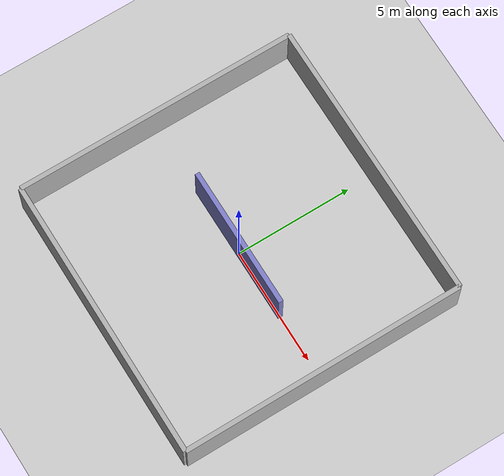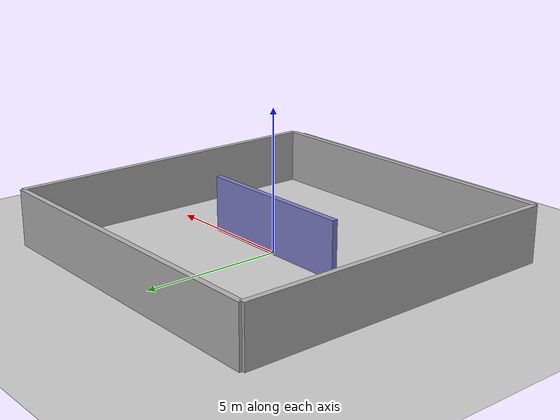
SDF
<?xml version="1.0" ?>
<sdf version="1.6">
  <world name="default">

    <!-- Physics plugin -->
    <plugin
      filename="gz-sim-physics-system"
      name="gz::sim::systems::Physics">
    </plugin>

    <!-- User commands -->
    <plugin
      filename="gz-sim-user-commands-system"
      name="gz::sim::systems::UserCommands">
    </plugin>

    <!-- Scene broadcaster -->
    <plugin
      filename="gz-sim-scene-broadcaster-system"
      name="gz::sim::systems::SceneBroadcaster">
    </plugin>

    <!-- Sensors -->
    <plugin
      filename="gz-sim-sensors-system"
      name="gz::sim::systems::Sensors">
      <render_engine>ogre2</render_engine>
    </plugin>

    <!-- IMU -->
    <plugin filename="gz-sim-imu-system"
      name="gz::sim::systems::Imu">
    </plugin>

    <!-- Gravity -->
    <gravity>0.0 0.0 -9.8</gravity>

    <!-- Sun light (main lighting) -->
    <light type="directional" name="sun">
      <cast_shadows>true</cast_shadows>
      <pose>0 0 15 0 0 0</pose>
      <diffuse>0.8 0.8 0.8 1</diffuse>
      <specular>0.5 0.5 0.5 1</specular>
      <attenuation>
        <range>1000</range>
        <constant>0.9</constant>
        <linear>0.01</linear>
        <quadratic>0.001</quadratic>
      </attenuation>
      <direction>-0.5 0.1 -0.9</direction>
    </light>

    <!-- Additional overhead light for better visibility -->
    <light type="point" name="ceiling_light">
      <pose>0 0 5 0 0 0</pose>
      <diffuse>1 1 1 1</diffuse>
      <specular>0.3 0.3 0.3 1</specular>
      <attenuation>
        <range>30</range>
        <constant>0.5</constant>
        <linear>0.01</linear>
        <quadratic>0.001</quadratic>
      </attenuation>
      <cast_shadows>false</cast_shadows>
    </light>

    <!-- Ground Plane -->
    <include>
      <uri>
        https://fuel.gazebosim.org/1.0/OpenRobotics/models/Ground Plane
      </uri>
    </include>

    <!-- ========== OUTER BOUNDARY WALLS (12x12m) ========== -->

    <!-- North Outer Wall -->
    <model name='north_outer_wall'>
      <static>true</static>
      <pose>0 6 1 0 0 0</pose>
      <link name='wall_link'>
        <collision name='wall_collision'>
          <geometry>
            <box>
              <size>12 0.2 2</size>
            </box>
          </geometry>
        </collision>
        <visual name='wall_visual'>
          <geometry>
            <box>
              <size>12 0.2 2</size>
            </box>
          </geometry>
          <material>
            <ambient>0.7 0.7 0.7 1</ambient>
            <diffuse>0.7 0.7 0.7 1</diffuse>
          </material>
        </visual>
      </link>
    </model>

    <!-- South Outer Wall -->
    <model name='south_outer_wall'>
      <static>true</static>
      <pose>0 -6 1 0 0 0</pose>
      <link name='wall_link'>
        <collision name='wall_collision'>
          <geometry>
            <box>
              <size>12 0.2 2</size>
            </box>
          </geometry>
        </collision>
        <visual name='wall_visual'>
          <geometry>
            <box>
              <size>12 0.2 2</size>
            </box>
          </geometry>
          <material>
            <ambient>0.7 0.7 0.7 1</ambient>
            <diffuse>0.7 0.7 0.7 1</diffuse>
          </material>
        </visual>
      </link>
    </model>

    <!-- East Outer Wall -->
    <model name='east_outer_wall'>
      <static>true</static>
      <pose>6 0 1 0 0 0</pose>
      <link name='wall_link'>
        <collision name='wall_collision'>
          <geometry>
            <box>
              <size>0.2 12 2</size>
            </box>
          </geometry>
        </collision>
        <visual name='wall_visual'>
          <geometry>
            <box>
              <size>0.2 12 2</size>
            </box>
          </geometry>
          <material>
            <ambient>0.7 0.7 0.7 1</ambient>
            <diffuse>0.7 0.7 0.7 1</diffuse>
          </material>
        </visual>
      </link>
    </model>

    <!-- West Outer Wall -->
    <model name='west_outer_wall'>
      <static>true</static>
      <pose>-6 0 1 0 0 0</pose>
      <link name='wall_link'>
        <collision name='wall_collision'>
          <geometry>
            <box>
              <size>0.2 12 2</size>
            </box>
          </geometry>
        </collision>
        <visual name='wall_visual'>
          <geometry>
            <box>
              <size>0.2 12 2</size>
            </box>
          </geometry>
          <material>
            <ambient>0.7 0.7 0.7 1</ambient>
            <diffuse>0.7 0.7 0.7 1</diffuse>
          </material>
        </visual>
      </link>
    </model>

    <!-- ========== MIDDLE WALL (creates C-shaped path) ========== -->

    <!-- Center horizontal wall - extends halfway across the room -->
    <model name='center_divider_wall'>
      <static>true</static>
      <pose>0 0 1 0 0 0</pose>
      <link name='wall_link'>
        <collision name='wall_collision'>
          <geometry>
            <box>
              <size>6 0.2 2</size>
            </box>
          </geometry>
        </collision>
        <visual name='wall_visual'>
          <geometry>
            <box>
              <size>6 0.2 2</size>
            </box>
          </geometry>
          <material>
            <ambient>0.5 0.5 0.8 1</ambient>
            <diffuse>0.5 0.5 0.8 1</diffuse>
          </material>
        </visual>
      </link>
    </model>

  </world>
</sdf>
